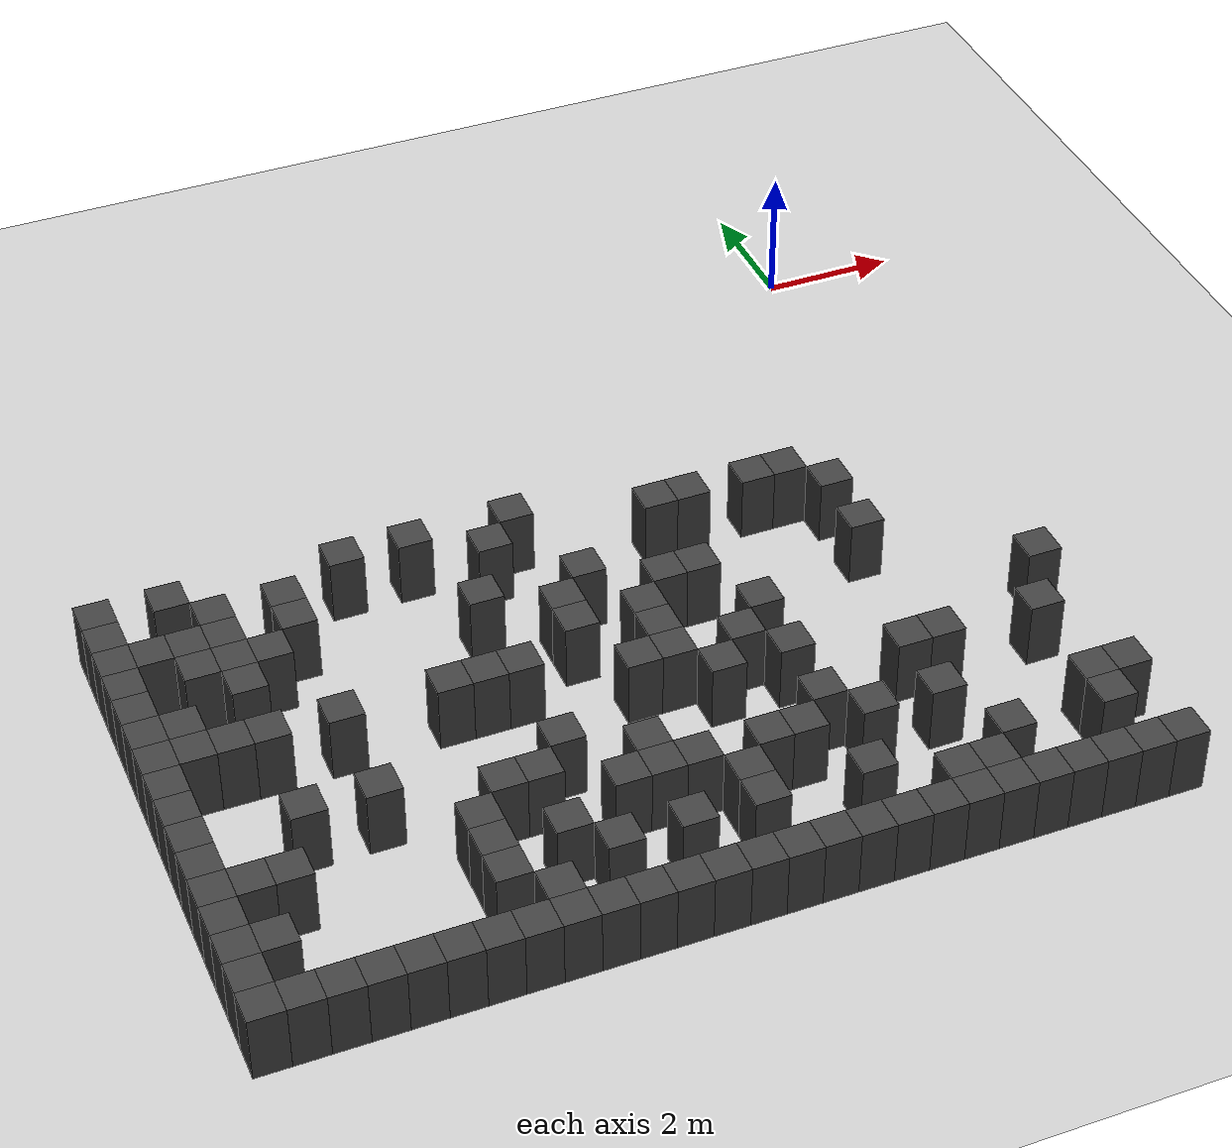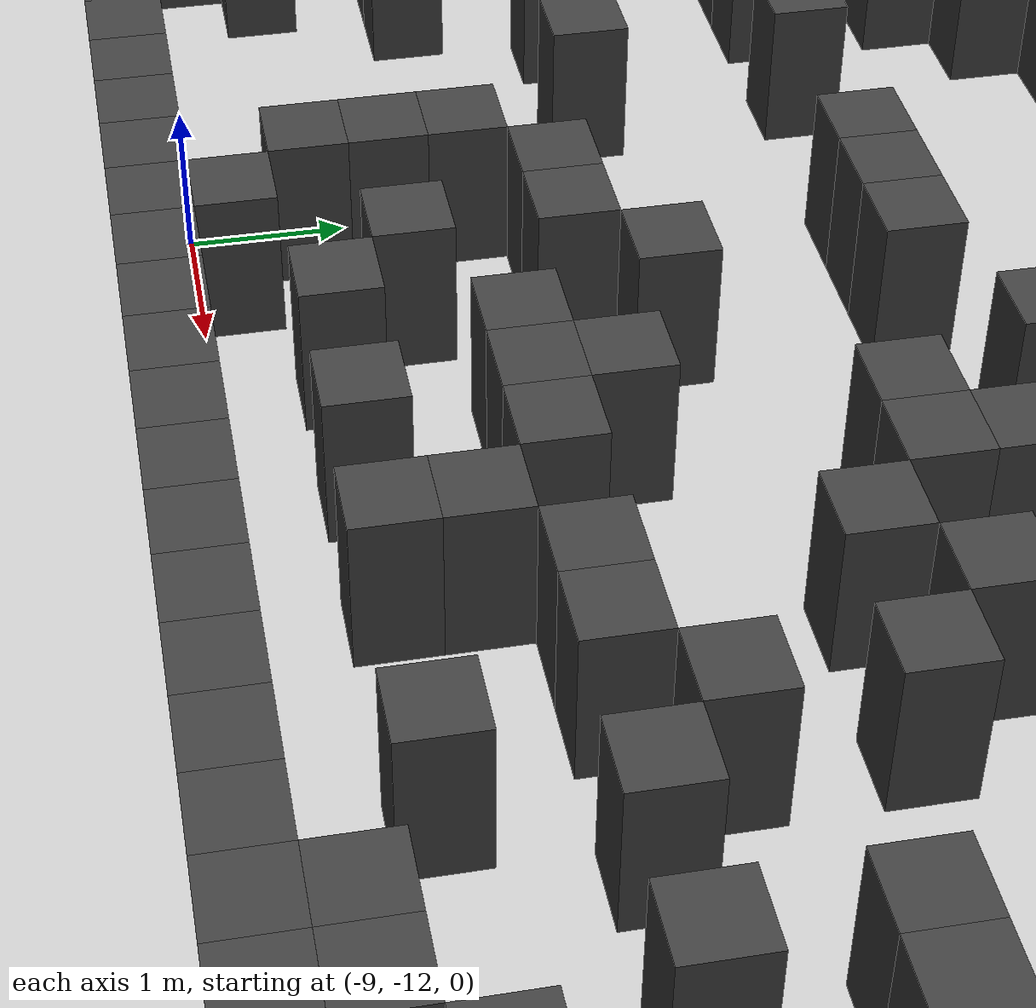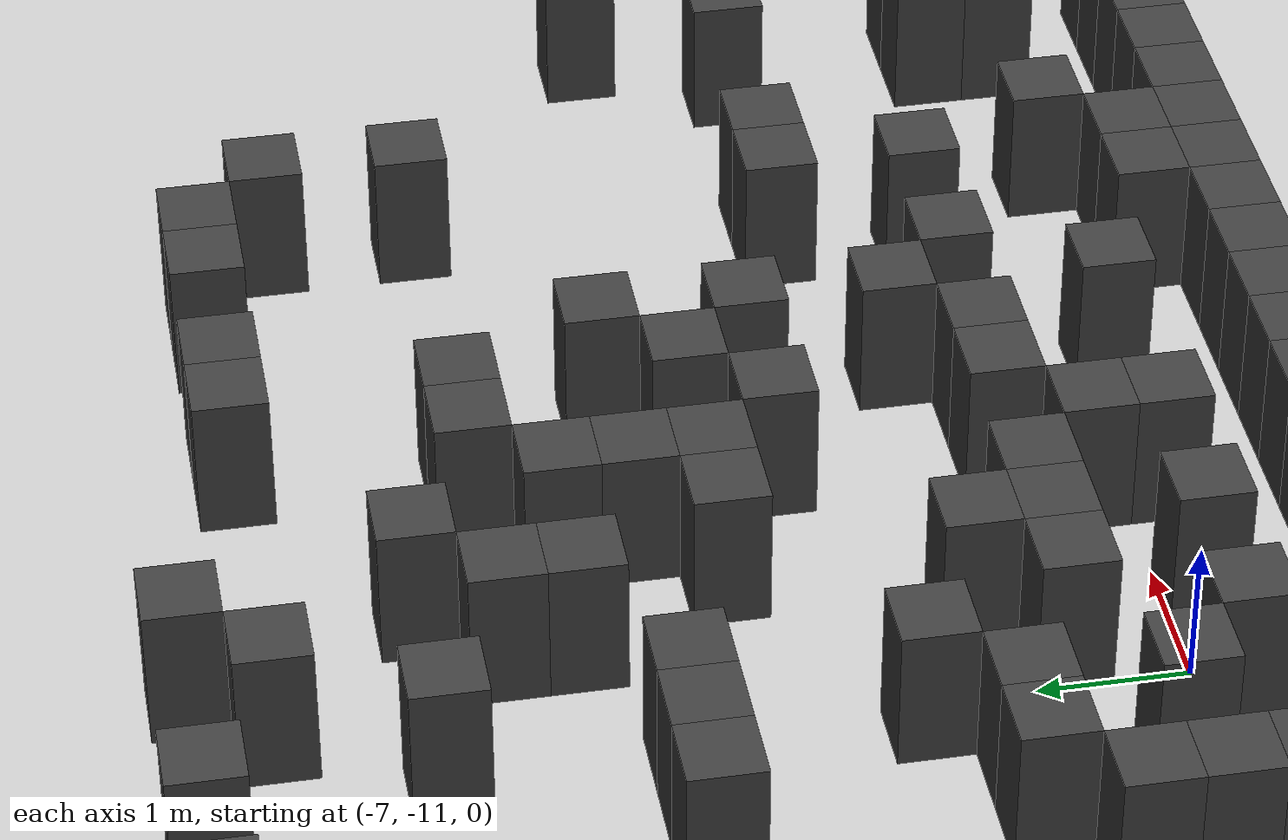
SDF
<sdf version="1.7">
 <world name="map_4818">
  <model name="ground_plane">
   <static>true</static>
   <link name="link">
    <collision name="collision">
     <geometry><plane><normal>0 0 1</normal><size>200 200</size></plane></geometry>
    </collision>
    <visual name="visual">
     <geometry><plane><normal>0 0 1</normal><size>200 200</size></plane></geometry>
     <material><ambient>0.8 0.8 0.8 1</ambient><diffuse>0.8 0.8 0.8 1</diffuse></material>
    </visual>
   </link>
  </model>
  <model name="maze_environment">
   <static>true</static>
   <link name="wall_468">
    <pose>-12.250 -4.750 0.500 0 0 0</pose>
    <collision name="col"><geometry><box><size>0.5 0.5 1.0</size></box></geometry></collision>
    <visual name="vis">
     <geometry><box><size>0.5 0.5 1.0</size></box></geometry>
     <material><ambient>0.15 0.15 0.15 1</ambient><diffuse>0.25 0.25 0.25 1</diffuse></material>
    </visual>
   </link>
   <link name="wall_469">
    <pose>-11.250 -4.750 0.500 0 0 0</pose>
    <collision name="col"><geometry><box><size>0.5 0.5 1.0</size></box></geometry></collision>
    <visual name="vis">
     <geometry><box><size>0.5 0.5 1.0</size></box></geometry>
     <material><ambient>0.15 0.15 0.15 1</ambient><diffuse>0.25 0.25 0.25 1</diffuse></material>
    </visual>
   </link>
   <link name="wall_470">
    <pose>-8.750 -4.750 0.500 0 0 0</pose>
    <collision name="col"><geometry><box><size>0.5 0.5 1.0</size></box></geometry></collision>
    <visual name="vis">
     <geometry><box><size>0.5 0.5 1.0</size></box></geometry>
     <material><ambient>0.15 0.15 0.15 1</ambient><diffuse>0.25 0.25 0.25 1</diffuse></material>
    </visual>
   </link>
   <link name="wall_471">
    <pose>-7.750 -4.750 0.500 0 0 0</pose>
    <collision name="col"><geometry><box><size>0.5 0.5 1.0</size></box></geometry></collision>
    <visual name="vis">
     <geometry><box><size>0.5 0.5 1.0</size></box></geometry>
     <material><ambient>0.15 0.15 0.15 1</ambient><diffuse>0.25 0.25 0.25 1</diffuse></material>
    </visual>
   </link>
   <link name="wall_472">
    <pose>-6.250 -4.750 0.500 0 0 0</pose>
    <collision name="col"><geometry><box><size>0.5 0.5 1.0</size></box></geometry></collision>
    <visual name="vis">
     <geometry><box><size>0.5 0.5 1.0</size></box></geometry>
     <material><ambient>0.15 0.15 0.15 1</ambient><diffuse>0.25 0.25 0.25 1</diffuse></material>
    </visual>
   </link>
   <link name="wall_485">
    <pose>-12.250 -5.250 0.500 0 0 0</pose>
    <collision name="col"><geometry><box><size>0.5 0.5 1.0</size></box></geometry></collision>
    <visual name="vis">
     <geometry><box><size>0.5 0.5 1.0</size></box></geometry>
     <material><ambient>0.15 0.15 0.15 1</ambient><diffuse>0.25 0.25 0.25 1</diffuse></material>
    </visual>
   </link>
   <link name="wall_486">
    <pose>-10.750 -5.250 0.500 0 0 0</pose>
    <collision name="col"><geometry><box><size>0.5 0.5 1.0</size></box></geometry></collision>
    <visual name="vis">
     <geometry><box><size>0.5 0.5 1.0</size></box></geometry>
     <material><ambient>0.15 0.15 0.15 1</ambient><diffuse>0.25 0.25 0.25 1</diffuse></material>
    </visual>
   </link>
   <link name="wall_487">
    <pose>-9.750 -5.250 0.500 0 0 0</pose>
    <collision name="col"><geometry><box><size>0.5 0.5 1.0</size></box></geometry></collision>
    <visual name="vis">
     <geometry><box><size>0.5 0.5 1.0</size></box></geometry>
     <material><ambient>0.15 0.15 0.15 1</ambient><diffuse>0.25 0.25 0.25 1</diffuse></material>
    </visual>
   </link>
   <link name="wall_488">
    <pose>-6.750 -5.250 0.500 0 0 0</pose>
    <collision name="col"><geometry><box><size>0.5 0.5 1.0</size></box></geometry></collision>
    <visual name="vis">
     <geometry><box><size>0.5 0.5 1.0</size></box></geometry>
     <material><ambient>0.15 0.15 0.15 1</ambient><diffuse>0.25 0.25 0.25 1</diffuse></material>
    </visual>
   </link>
   <link name="wall_489">
    <pose>-4.250 -5.250 0.500 0 0 0</pose>
    <collision name="col"><geometry><box><size>0.5 0.5 1.0</size></box></geometry></collision>
    <visual name="vis">
     <geometry><box><size>0.5 0.5 1.0</size></box></geometry>
     <material><ambient>0.15 0.15 0.15 1</ambient><diffuse>0.25 0.25 0.25 1</diffuse></material>
    </visual>
   </link>
   <link name="wall_490">
    <pose>-3.750 -5.250 0.500 0 0 0</pose>
    <collision name="col"><geometry><box><size>0.5 0.5 1.0</size></box></geometry></collision>
    <visual name="vis">
     <geometry><box><size>0.5 0.5 1.0</size></box></geometry>
     <material><ambient>0.15 0.15 0.15 1</ambient><diffuse>0.25 0.25 0.25 1</diffuse></material>
    </visual>
   </link>
   <link name="wall_491">
    <pose>-2.750 -5.250 0.500 0 0 0</pose>
    <collision name="col"><geometry><box><size>0.5 0.5 1.0</size></box></geometry></collision>
    <visual name="vis">
     <geometry><box><size>0.5 0.5 1.0</size></box></geometry>
     <material><ambient>0.15 0.15 0.15 1</ambient><diffuse>0.25 0.25 0.25 1</diffuse></material>
    </visual>
   </link>
   <link name="wall_492">
    <pose>-2.250 -5.250 0.500 0 0 0</pose>
    <collision name="col"><geometry><box><size>0.5 0.5 1.0</size></box></geometry></collision>
    <visual name="vis">
     <geometry><box><size>0.5 0.5 1.0</size></box></geometry>
     <material><ambient>0.15 0.15 0.15 1</ambient><diffuse>0.25 0.25 0.25 1</diffuse></material>
    </visual>
   </link>
   <link name="wall_497">
    <pose>-12.250 -5.750 0.500 0 0 0</pose>
    <collision name="col"><geometry><box><size>0.5 0.5 1.0</size></box></geometry></collision>
    <visual name="vis">
     <geometry><box><size>0.5 0.5 1.0</size></box></geometry>
     <material><ambient>0.15 0.15 0.15 1</ambient><diffuse>0.25 0.25 0.25 1</diffuse></material>
    </visual>
   </link>
   <link name="wall_498">
    <pose>-11.750 -5.750 0.500 0 0 0</pose>
    <collision name="col"><geometry><box><size>0.5 0.5 1.0</size></box></geometry></collision>
    <visual name="vis">
     <geometry><box><size>0.5 0.5 1.0</size></box></geometry>
     <material><ambient>0.15 0.15 0.15 1</ambient><diffuse>0.25 0.25 0.25 1</diffuse></material>
    </visual>
   </link>
   <link name="wall_499">
    <pose>-11.250 -5.750 0.500 0 0 0</pose>
    <collision name="col"><geometry><box><size>0.5 0.5 1.0</size></box></geometry></collision>
    <visual name="vis">
     <geometry><box><size>0.5 0.5 1.0</size></box></geometry>
     <material><ambient>0.15 0.15 0.15 1</ambient><diffuse>0.25 0.25 0.25 1</diffuse></material>
    </visual>
   </link>
   <link name="wall_500">
    <pose>-10.750 -5.750 0.500 0 0 0</pose>
    <collision name="col"><geometry><box><size>0.5 0.5 1.0</size></box></geometry></collision>
    <visual name="vis">
     <geometry><box><size>0.5 0.5 1.0</size></box></geometry>
     <material><ambient>0.15 0.15 0.15 1</ambient><diffuse>0.25 0.25 0.25 1</diffuse></material>
    </visual>
   </link>
   <link name="wall_501">
    <pose>-9.750 -5.750 0.500 0 0 0</pose>
    <collision name="col"><geometry><box><size>0.5 0.5 1.0</size></box></geometry></collision>
    <visual name="vis">
     <geometry><box><size>0.5 0.5 1.0</size></box></geometry>
     <material><ambient>0.15 0.15 0.15 1</ambient><diffuse>0.25 0.25 0.25 1</diffuse></material>
    </visual>
   </link>
   <link name="wall_502">
    <pose>-1.750 -5.750 0.500 0 0 0</pose>
    <collision name="col"><geometry><box><size>0.5 0.5 1.0</size></box></geometry></collision>
    <visual name="vis">
     <geometry><box><size>0.5 0.5 1.0</size></box></geometry>
     <material><ambient>0.15 0.15 0.15 1</ambient><diffuse>0.25 0.25 0.25 1</diffuse></material>
    </visual>
   </link>
   <link name="wall_508">
    <pose>-12.250 -6.250 0.500 0 0 0</pose>
    <collision name="col"><geometry><box><size>0.5 0.5 1.0</size></box></geometry></collision>
    <visual name="vis">
     <geometry><box><size>0.5 0.5 1.0</size></box></geometry>
     <material><ambient>0.15 0.15 0.15 1</ambient><diffuse>0.25 0.25 0.25 1</diffuse></material>
    </visual>
   </link>
   <link name="wall_509">
    <pose>-11.250 -6.250 0.500 0 0 0</pose>
    <collision name="col"><geometry><box><size>0.5 0.5 1.0</size></box></geometry></collision>
    <visual name="vis">
     <geometry><box><size>0.5 0.5 1.0</size></box></geometry>
     <material><ambient>0.15 0.15 0.15 1</ambient><diffuse>0.25 0.25 0.25 1</diffuse></material>
    </visual>
   </link>
   <link name="wall_510">
    <pose>-10.750 -6.250 0.500 0 0 0</pose>
    <collision name="col"><geometry><box><size>0.5 0.5 1.0</size></box></geometry></collision>
    <visual name="vis">
     <geometry><box><size>0.5 0.5 1.0</size></box></geometry>
     <material><ambient>0.15 0.15 0.15 1</ambient><diffuse>0.25 0.25 0.25 1</diffuse></material>
    </visual>
   </link>
   <link name="wall_511">
    <pose>-10.250 -6.250 0.500 0 0 0</pose>
    <collision name="col"><geometry><box><size>0.5 0.5 1.0</size></box></geometry></collision>
    <visual name="vis">
     <geometry><box><size>0.5 0.5 1.0</size></box></geometry>
     <material><ambient>0.15 0.15 0.15 1</ambient><diffuse>0.25 0.25 0.25 1</diffuse></material>
    </visual>
   </link>
   <link name="wall_512">
    <pose>-7.250 -6.250 0.500 0 0 0</pose>
    <collision name="col"><geometry><box><size>0.5 0.5 1.0</size></box></geometry></collision>
    <visual name="vis">
     <geometry><box><size>0.5 0.5 1.0</size></box></geometry>
     <material><ambient>0.15 0.15 0.15 1</ambient><diffuse>0.25 0.25 0.25 1</diffuse></material>
    </visual>
   </link>
   <link name="wall_513">
    <pose>-5.750 -6.250 0.500 0 0 0</pose>
    <collision name="col"><geometry><box><size>0.5 0.5 1.0</size></box></geometry></collision>
    <visual name="vis">
     <geometry><box><size>0.5 0.5 1.0</size></box></geometry>
     <material><ambient>0.15 0.15 0.15 1</ambient><diffuse>0.25 0.25 0.25 1</diffuse></material>
    </visual>
   </link>
   <link name="wall_520">
    <pose>-12.250 -6.750 0.500 0 0 0</pose>
    <collision name="col"><geometry><box><size>0.5 0.5 1.0</size></box></geometry></collision>
    <visual name="vis">
     <geometry><box><size>0.5 0.5 1.0</size></box></geometry>
     <material><ambient>0.15 0.15 0.15 1</ambient><diffuse>0.25 0.25 0.25 1</diffuse></material>
    </visual>
   </link>
   <link name="wall_521">
    <pose>-10.750 -6.750 0.500 0 0 0</pose>
    <collision name="col"><geometry><box><size>0.5 0.5 1.0</size></box></geometry></collision>
    <visual name="vis">
     <geometry><box><size>0.5 0.5 1.0</size></box></geometry>
     <material><ambient>0.15 0.15 0.15 1</ambient><diffuse>0.25 0.25 0.25 1</diffuse></material>
    </visual>
   </link>
   <link name="wall_522">
    <pose>-6.250 -6.750 0.500 0 0 0</pose>
    <collision name="col"><geometry><box><size>0.5 0.5 1.0</size></box></geometry></collision>
    <visual name="vis">
     <geometry><box><size>0.5 0.5 1.0</size></box></geometry>
     <material><ambient>0.15 0.15 0.15 1</ambient><diffuse>0.25 0.25 0.25 1</diffuse></material>
    </visual>
   </link>
   <link name="wall_523">
    <pose>-4.750 -6.750 0.500 0 0 0</pose>
    <collision name="col"><geometry><box><size>0.5 0.5 1.0</size></box></geometry></collision>
    <visual name="vis">
     <geometry><box><size>0.5 0.5 1.0</size></box></geometry>
     <material><ambient>0.15 0.15 0.15 1</ambient><diffuse>0.25 0.25 0.25 1</diffuse></material>
    </visual>
   </link>
   <link name="wall_524">
    <pose>-4.250 -6.750 0.500 0 0 0</pose>
    <collision name="col"><geometry><box><size>0.5 0.5 1.0</size></box></geometry></collision>
    <visual name="vis">
     <geometry><box><size>0.5 0.5 1.0</size></box></geometry>
     <material><ambient>0.15 0.15 0.15 1</ambient><diffuse>0.25 0.25 0.25 1</diffuse></material>
    </visual>
   </link>
   <link name="wall_525">
    <pose>-1.750 -6.750 0.500 0 0 0</pose>
    <collision name="col"><geometry><box><size>0.5 0.5 1.0</size></box></geometry></collision>
    <visual name="vis">
     <geometry><box><size>0.5 0.5 1.0</size></box></geometry>
     <material><ambient>0.15 0.15 0.15 1</ambient><diffuse>0.25 0.25 0.25 1</diffuse></material>
    </visual>
   </link>
   <link name="wall_538">
    <pose>-12.250 -7.250 0.500 0 0 0</pose>
    <collision name="col"><geometry><box><size>0.5 0.5 1.0</size></box></geometry></collision>
    <visual name="vis">
     <geometry><box><size>0.5 0.5 1.0</size></box></geometry>
     <material><ambient>0.15 0.15 0.15 1</ambient><diffuse>0.25 0.25 0.25 1</diffuse></material>
    </visual>
   </link>
   <link name="wall_539">
    <pose>-11.750 -7.250 0.500 0 0 0</pose>
    <collision name="col"><geometry><box><size>0.5 0.5 1.0</size></box></geometry></collision>
    <visual name="vis">
     <geometry><box><size>0.5 0.5 1.0</size></box></geometry>
     <material><ambient>0.15 0.15 0.15 1</ambient><diffuse>0.25 0.25 0.25 1</diffuse></material>
    </visual>
   </link>
   <link name="wall_540">
    <pose>-6.250 -7.250 0.500 0 0 0</pose>
    <collision name="col"><geometry><box><size>0.5 0.5 1.0</size></box></geometry></collision>
    <visual name="vis">
     <geometry><box><size>0.5 0.5 1.0</size></box></geometry>
     <material><ambient>0.15 0.15 0.15 1</ambient><diffuse>0.25 0.25 0.25 1</diffuse></material>
    </visual>
   </link>
   <link name="wall_541">
    <pose>-5.250 -7.250 0.500 0 0 0</pose>
    <collision name="col"><geometry><box><size>0.5 0.5 1.0</size></box></geometry></collision>
    <visual name="vis">
     <geometry><box><size>0.5 0.5 1.0</size></box></geometry>
     <material><ambient>0.15 0.15 0.15 1</ambient><diffuse>0.25 0.25 0.25 1</diffuse></material>
    </visual>
   </link>
   <link name="wall_548">
    <pose>-12.250 -7.750 0.500 0 0 0</pose>
    <collision name="col"><geometry><box><size>0.5 0.5 1.0</size></box></geometry></collision>
    <visual name="vis">
     <geometry><box><size>0.5 0.5 1.0</size></box></geometry>
     <material><ambient>0.15 0.15 0.15 1</ambient><diffuse>0.25 0.25 0.25 1</diffuse></material>
    </visual>
   </link>
   <link name="wall_549">
    <pose>-11.750 -7.750 0.500 0 0 0</pose>
    <collision name="col"><geometry><box><size>0.5 0.5 1.0</size></box></geometry></collision>
    <visual name="vis">
     <geometry><box><size>0.5 0.5 1.0</size></box></geometry>
     <material><ambient>0.15 0.15 0.15 1</ambient><diffuse>0.25 0.25 0.25 1</diffuse></material>
    </visual>
   </link>
   <link name="wall_550">
    <pose>-11.250 -7.750 0.500 0 0 0</pose>
    <collision name="col"><geometry><box><size>0.5 0.5 1.0</size></box></geometry></collision>
    <visual name="vis">
     <geometry><box><size>0.5 0.5 1.0</size></box></geometry>
     <material><ambient>0.15 0.15 0.15 1</ambient><diffuse>0.25 0.25 0.25 1</diffuse></material>
    </visual>
   </link>
   <link name="wall_551">
    <pose>-10.750 -7.750 0.500 0 0 0</pose>
    <collision name="col"><geometry><box><size>0.5 0.5 1.0</size></box></geometry></collision>
    <visual name="vis">
     <geometry><box><size>0.5 0.5 1.0</size></box></geometry>
     <material><ambient>0.15 0.15 0.15 1</ambient><diffuse>0.25 0.25 0.25 1</diffuse></material>
    </visual>
   </link>
   <link name="wall_552">
    <pose>-9.750 -7.750 0.500 0 0 0</pose>
    <collision name="col"><geometry><box><size>0.5 0.5 1.0</size></box></geometry></collision>
    <visual name="vis">
     <geometry><box><size>0.5 0.5 1.0</size></box></geometry>
     <material><ambient>0.15 0.15 0.15 1</ambient><diffuse>0.25 0.25 0.25 1</diffuse></material>
    </visual>
   </link>
   <link name="wall_553">
    <pose>-8.250 -7.750 0.500 0 0 0</pose>
    <collision name="col"><geometry><box><size>0.5 0.5 1.0</size></box></geometry></collision>
    <visual name="vis">
     <geometry><box><size>0.5 0.5 1.0</size></box></geometry>
     <material><ambient>0.15 0.15 0.15 1</ambient><diffuse>0.25 0.25 0.25 1</diffuse></material>
    </visual>
   </link>
   <link name="wall_554">
    <pose>-7.750 -7.750 0.500 0 0 0</pose>
    <collision name="col"><geometry><box><size>0.5 0.5 1.0</size></box></geometry></collision>
    <visual name="vis">
     <geometry><box><size>0.5 0.5 1.0</size></box></geometry>
     <material><ambient>0.15 0.15 0.15 1</ambient><diffuse>0.25 0.25 0.25 1</diffuse></material>
    </visual>
   </link>
   <link name="wall_555">
    <pose>-7.250 -7.750 0.500 0 0 0</pose>
    <collision name="col"><geometry><box><size>0.5 0.5 1.0</size></box></geometry></collision>
    <visual name="vis">
     <geometry><box><size>0.5 0.5 1.0</size></box></geometry>
     <material><ambient>0.15 0.15 0.15 1</ambient><diffuse>0.25 0.25 0.25 1</diffuse></material>
    </visual>
   </link>
   <link name="wall_556">
    <pose>-5.250 -7.750 0.500 0 0 0</pose>
    <collision name="col"><geometry><box><size>0.5 0.5 1.0</size></box></geometry></collision>
    <visual name="vis">
     <geometry><box><size>0.5 0.5 1.0</size></box></geometry>
     <material><ambient>0.15 0.15 0.15 1</ambient><diffuse>0.25 0.25 0.25 1</diffuse></material>
    </visual>
   </link>
   <link name="wall_557">
    <pose>-3.750 -7.750 0.500 0 0 0</pose>
    <collision name="col"><geometry><box><size>0.5 0.5 1.0</size></box></geometry></collision>
    <visual name="vis">
     <geometry><box><size>0.5 0.5 1.0</size></box></geometry>
     <material><ambient>0.15 0.15 0.15 1</ambient><diffuse>0.25 0.25 0.25 1</diffuse></material>
    </visual>
   </link>
   <link name="wall_565">
    <pose>-12.250 -8.250 0.500 0 0 0</pose>
    <collision name="col"><geometry><box><size>0.5 0.5 1.0</size></box></geometry></collision>
    <visual name="vis">
     <geometry><box><size>0.5 0.5 1.0</size></box></geometry>
     <material><ambient>0.15 0.15 0.15 1</ambient><diffuse>0.25 0.25 0.25 1</diffuse></material>
    </visual>
   </link>
   <link name="wall_566">
    <pose>-5.750 -8.250 0.500 0 0 0</pose>
    <collision name="col"><geometry><box><size>0.5 0.5 1.0</size></box></geometry></collision>
    <visual name="vis">
     <geometry><box><size>0.5 0.5 1.0</size></box></geometry>
     <material><ambient>0.15 0.15 0.15 1</ambient><diffuse>0.25 0.25 0.25 1</diffuse></material>
    </visual>
   </link>
   <link name="wall_567">
    <pose>-5.250 -8.250 0.500 0 0 0</pose>
    <collision name="col"><geometry><box><size>0.5 0.5 1.0</size></box></geometry></collision>
    <visual name="vis">
     <geometry><box><size>0.5 0.5 1.0</size></box></geometry>
     <material><ambient>0.15 0.15 0.15 1</ambient><diffuse>0.25 0.25 0.25 1</diffuse></material>
    </visual>
   </link>
   <link name="wall_568">
    <pose>-4.250 -8.250 0.500 0 0 0</pose>
    <collision name="col"><geometry><box><size>0.5 0.5 1.0</size></box></geometry></collision>
    <visual name="vis">
     <geometry><box><size>0.5 0.5 1.0</size></box></geometry>
     <material><ambient>0.15 0.15 0.15 1</ambient><diffuse>0.25 0.25 0.25 1</diffuse></material>
    </visual>
   </link>
   <link name="wall_569">
    <pose>0.250 -8.250 0.500 0 0 0</pose>
    <collision name="col"><geometry><box><size>0.5 0.5 1.0</size></box></geometry></collision>
    <visual name="vis">
     <geometry><box><size>0.5 0.5 1.0</size></box></geometry>
     <material><ambient>0.15 0.15 0.15 1</ambient><diffuse>0.25 0.25 0.25 1</diffuse></material>
    </visual>
   </link>
   <link name="wall_579">
    <pose>-12.250 -8.750 0.500 0 0 0</pose>
    <collision name="col"><geometry><box><size>0.5 0.5 1.0</size></box></geometry></collision>
    <visual name="vis">
     <geometry><box><size>0.5 0.5 1.0</size></box></geometry>
     <material><ambient>0.15 0.15 0.15 1</ambient><diffuse>0.25 0.25 0.25 1</diffuse></material>
    </visual>
   </link>
   <link name="wall_580">
    <pose>-4.750 -8.750 0.500 0 0 0</pose>
    <collision name="col"><geometry><box><size>0.5 0.5 1.0</size></box></geometry></collision>
    <visual name="vis">
     <geometry><box><size>0.5 0.5 1.0</size></box></geometry>
     <material><ambient>0.15 0.15 0.15 1</ambient><diffuse>0.25 0.25 0.25 1</diffuse></material>
    </visual>
   </link>
   <link name="wall_581">
    <pose>-3.750 -8.750 0.500 0 0 0</pose>
    <collision name="col"><geometry><box><size>0.5 0.5 1.0</size></box></geometry></collision>
    <visual name="vis">
     <geometry><box><size>0.5 0.5 1.0</size></box></geometry>
     <material><ambient>0.15 0.15 0.15 1</ambient><diffuse>0.25 0.25 0.25 1</diffuse></material>
    </visual>
   </link>
   <link name="wall_586">
    <pose>-12.250 -9.250 0.500 0 0 0</pose>
    <collision name="col"><geometry><box><size>0.5 0.5 1.0</size></box></geometry></collision>
    <visual name="vis">
     <geometry><box><size>0.5 0.5 1.0</size></box></geometry>
     <material><ambient>0.15 0.15 0.15 1</ambient><diffuse>0.25 0.25 0.25 1</diffuse></material>
    </visual>
   </link>
   <link name="wall_587">
    <pose>-10.750 -9.250 0.500 0 0 0</pose>
    <collision name="col"><geometry><box><size>0.5 0.5 1.0</size></box></geometry></collision>
    <visual name="vis">
     <geometry><box><size>0.5 0.5 1.0</size></box></geometry>
     <material><ambient>0.15 0.15 0.15 1</ambient><diffuse>0.25 0.25 0.25 1</diffuse></material>
    </visual>
   </link>
   <link name="wall_588">
    <pose>-9.750 -9.250 0.500 0 0 0</pose>
    <collision name="col"><geometry><box><size>0.5 0.5 1.0</size></box></geometry></collision>
    <visual name="vis">
     <geometry><box><size>0.5 0.5 1.0</size></box></geometry>
     <material><ambient>0.15 0.15 0.15 1</ambient><diffuse>0.25 0.25 0.25 1</diffuse></material>
    </visual>
   </link>
   <link name="wall_589">
    <pose>-7.250 -9.250 0.500 0 0 0</pose>
    <collision name="col"><geometry><box><size>0.5 0.5 1.0</size></box></geometry></collision>
    <visual name="vis">
     <geometry><box><size>0.5 0.5 1.0</size></box></geometry>
     <material><ambient>0.15 0.15 0.15 1</ambient><diffuse>0.25 0.25 0.25 1</diffuse></material>
    </visual>
   </link>
   <link name="wall_590">
    <pose>-2.250 -9.250 0.500 0 0 0</pose>
    <collision name="col"><geometry><box><size>0.5 0.5 1.0</size></box></geometry></collision>
    <visual name="vis">
     <geometry><box><size>0.5 0.5 1.0</size></box></geometry>
     <material><ambient>0.15 0.15 0.15 1</ambient><diffuse>0.25 0.25 0.25 1</diffuse></material>
    </visual>
   </link>
   <link name="wall_591">
    <pose>-1.750 -9.250 0.500 0 0 0</pose>
    <collision name="col"><geometry><box><size>0.5 0.5 1.0</size></box></geometry></collision>
    <visual name="vis">
     <geometry><box><size>0.5 0.5 1.0</size></box></geometry>
     <material><ambient>0.15 0.15 0.15 1</ambient><diffuse>0.25 0.25 0.25 1</diffuse></material>
    </visual>
   </link>
   <link name="wall_592">
    <pose>-0.250 -9.250 0.500 0 0 0</pose>
    <collision name="col"><geometry><box><size>0.5 0.5 1.0</size></box></geometry></collision>
    <visual name="vis">
     <geometry><box><size>0.5 0.5 1.0</size></box></geometry>
     <material><ambient>0.15 0.15 0.15 1</ambient><diffuse>0.25 0.25 0.25 1</diffuse></material>
    </visual>
   </link>
   <link name="wall_601">
    <pose>-12.250 -9.750 0.500 0 0 0</pose>
    <collision name="col"><geometry><box><size>0.5 0.5 1.0</size></box></geometry></collision>
    <visual name="vis">
     <geometry><box><size>0.5 0.5 1.0</size></box></geometry>
     <material><ambient>0.15 0.15 0.15 1</ambient><diffuse>0.25 0.25 0.25 1</diffuse></material>
    </visual>
   </link>
   <link name="wall_602">
    <pose>-8.250 -9.750 0.500 0 0 0</pose>
    <collision name="col"><geometry><box><size>0.5 0.5 1.0</size></box></geometry></collision>
    <visual name="vis">
     <geometry><box><size>0.5 0.5 1.0</size></box></geometry>
     <material><ambient>0.15 0.15 0.15 1</ambient><diffuse>0.25 0.25 0.25 1</diffuse></material>
    </visual>
   </link>
   <link name="wall_603">
    <pose>-7.750 -9.750 0.500 0 0 0</pose>
    <collision name="col"><geometry><box><size>0.5 0.5 1.0</size></box></geometry></collision>
    <visual name="vis">
     <geometry><box><size>0.5 0.5 1.0</size></box></geometry>
     <material><ambient>0.15 0.15 0.15 1</ambient><diffuse>0.25 0.25 0.25 1</diffuse></material>
    </visual>
   </link>
   <link name="wall_604">
    <pose>-6.250 -9.750 0.500 0 0 0</pose>
    <collision name="col"><geometry><box><size>0.5 0.5 1.0</size></box></geometry></collision>
    <visual name="vis">
     <geometry><box><size>0.5 0.5 1.0</size></box></geometry>
     <material><ambient>0.15 0.15 0.15 1</ambient><diffuse>0.25 0.25 0.25 1</diffuse></material>
    </visual>
   </link>
   <link name="wall_605">
    <pose>-3.750 -9.750 0.500 0 0 0</pose>
    <collision name="col"><geometry><box><size>0.5 0.5 1.0</size></box></geometry></collision>
    <visual name="vis">
     <geometry><box><size>0.5 0.5 1.0</size></box></geometry>
     <material><ambient>0.15 0.15 0.15 1</ambient><diffuse>0.25 0.25 0.25 1</diffuse></material>
    </visual>
   </link>
   <link name="wall_612">
    <pose>-12.250 -10.250 0.500 0 0 0</pose>
    <collision name="col"><geometry><box><size>0.5 0.5 1.0</size></box></geometry></collision>
    <visual name="vis">
     <geometry><box><size>0.5 0.5 1.0</size></box></geometry>
     <material><ambient>0.15 0.15 0.15 1</ambient><diffuse>0.25 0.25 0.25 1</diffuse></material>
    </visual>
   </link>
   <link name="wall_613">
    <pose>-11.750 -10.250 0.500 0 0 0</pose>
    <collision name="col"><geometry><box><size>0.5 0.5 1.0</size></box></geometry></collision>
    <visual name="vis">
     <geometry><box><size>0.5 0.5 1.0</size></box></geometry>
     <material><ambient>0.15 0.15 0.15 1</ambient><diffuse>0.25 0.25 0.25 1</diffuse></material>
    </visual>
   </link>
   <link name="wall_614">
    <pose>-11.250 -10.250 0.500 0 0 0</pose>
    <collision name="col"><geometry><box><size>0.5 0.5 1.0</size></box></geometry></collision>
    <visual name="vis">
     <geometry><box><size>0.5 0.5 1.0</size></box></geometry>
     <material><ambient>0.15 0.15 0.15 1</ambient><diffuse>0.25 0.25 0.25 1</diffuse></material>
    </visual>
   </link>
   <link name="wall_615">
    <pose>-8.750 -10.250 0.500 0 0 0</pose>
    <collision name="col"><geometry><box><size>0.5 0.5 1.0</size></box></geometry></collision>
    <visual name="vis">
     <geometry><box><size>0.5 0.5 1.0</size></box></geometry>
     <material><ambient>0.15 0.15 0.15 1</ambient><diffuse>0.25 0.25 0.25 1</diffuse></material>
    </visual>
   </link>
   <link name="wall_616">
    <pose>-6.750 -10.250 0.500 0 0 0</pose>
    <collision name="col"><geometry><box><size>0.5 0.5 1.0</size></box></geometry></collision>
    <visual name="vis">
     <geometry><box><size>0.5 0.5 1.0</size></box></geometry>
     <material><ambient>0.15 0.15 0.15 1</ambient><diffuse>0.25 0.25 0.25 1</diffuse></material>
    </visual>
   </link>
   <link name="wall_617">
    <pose>-6.250 -10.250 0.500 0 0 0</pose>
    <collision name="col"><geometry><box><size>0.5 0.5 1.0</size></box></geometry></collision>
    <visual name="vis">
     <geometry><box><size>0.5 0.5 1.0</size></box></geometry>
     <material><ambient>0.15 0.15 0.15 1</ambient><diffuse>0.25 0.25 0.25 1</diffuse></material>
    </visual>
   </link>
   <link name="wall_618">
    <pose>-5.750 -10.250 0.500 0 0 0</pose>
    <collision name="col"><geometry><box><size>0.5 0.5 1.0</size></box></geometry></collision>
    <visual name="vis">
     <geometry><box><size>0.5 0.5 1.0</size></box></geometry>
     <material><ambient>0.15 0.15 0.15 1</ambient><diffuse>0.25 0.25 0.25 1</diffuse></material>
    </visual>
   </link>
   <link name="wall_619">
    <pose>-4.750 -10.250 0.500 0 0 0</pose>
    <collision name="col"><geometry><box><size>0.5 0.5 1.0</size></box></geometry></collision>
    <visual name="vis">
     <geometry><box><size>0.5 0.5 1.0</size></box></geometry>
     <material><ambient>0.15 0.15 0.15 1</ambient><diffuse>0.25 0.25 0.25 1</diffuse></material>
    </visual>
   </link>
   <link name="wall_620">
    <pose>-4.250 -10.250 0.500 0 0 0</pose>
    <collision name="col"><geometry><box><size>0.5 0.5 1.0</size></box></geometry></collision>
    <visual name="vis">
     <geometry><box><size>0.5 0.5 1.0</size></box></geometry>
     <material><ambient>0.15 0.15 0.15 1</ambient><diffuse>0.25 0.25 0.25 1</diffuse></material>
    </visual>
   </link>
   <link name="wall_621">
    <pose>-3.250 -10.250 0.500 0 0 0</pose>
    <collision name="col"><geometry><box><size>0.5 0.5 1.0</size></box></geometry></collision>
    <visual name="vis">
     <geometry><box><size>0.5 0.5 1.0</size></box></geometry>
     <material><ambient>0.15 0.15 0.15 1</ambient><diffuse>0.25 0.25 0.25 1</diffuse></material>
    </visual>
   </link>
   <link name="wall_622">
    <pose>-2.250 -10.250 0.500 0 0 0</pose>
    <collision name="col"><geometry><box><size>0.5 0.5 1.0</size></box></geometry></collision>
    <visual name="vis">
     <geometry><box><size>0.5 0.5 1.0</size></box></geometry>
     <material><ambient>0.15 0.15 0.15 1</ambient><diffuse>0.25 0.25 0.25 1</diffuse></material>
    </visual>
   </link>
   <link name="wall_632">
    <pose>-12.250 -10.750 0.500 0 0 0</pose>
    <collision name="col"><geometry><box><size>0.5 0.5 1.0</size></box></geometry></collision>
    <visual name="vis">
     <geometry><box><size>0.5 0.5 1.0</size></box></geometry>
     <material><ambient>0.15 0.15 0.15 1</ambient><diffuse>0.25 0.25 0.25 1</diffuse></material>
    </visual>
   </link>
   <link name="wall_633">
    <pose>-8.750 -10.750 0.500 0 0 0</pose>
    <collision name="col"><geometry><box><size>0.5 0.5 1.0</size></box></geometry></collision>
    <visual name="vis">
     <geometry><box><size>0.5 0.5 1.0</size></box></geometry>
     <material><ambient>0.15 0.15 0.15 1</ambient><diffuse>0.25 0.25 0.25 1</diffuse></material>
    </visual>
   </link>
   <link name="wall_634">
    <pose>-7.750 -10.750 0.500 0 0 0</pose>
    <collision name="col"><geometry><box><size>0.5 0.5 1.0</size></box></geometry></collision>
    <visual name="vis">
     <geometry><box><size>0.5 0.5 1.0</size></box></geometry>
     <material><ambient>0.15 0.15 0.15 1</ambient><diffuse>0.25 0.25 0.25 1</diffuse></material>
    </visual>
   </link>
   <link name="wall_635">
    <pose>-5.250 -10.750 0.500 0 0 0</pose>
    <collision name="col"><geometry><box><size>0.5 0.5 1.0</size></box></geometry></collision>
    <visual name="vis">
     <geometry><box><size>0.5 0.5 1.0</size></box></geometry>
     <material><ambient>0.15 0.15 0.15 1</ambient><diffuse>0.25 0.25 0.25 1</diffuse></material>
    </visual>
   </link>
   <link name="wall_636">
    <pose>-0.250 -10.750 0.500 0 0 0</pose>
    <collision name="col"><geometry><box><size>0.5 0.5 1.0</size></box></geometry></collision>
    <visual name="vis">
     <geometry><box><size>0.5 0.5 1.0</size></box></geometry>
     <material><ambient>0.15 0.15 0.15 1</ambient><diffuse>0.25 0.25 0.25 1</diffuse></material>
    </visual>
   </link>
   <link name="wall_637">
    <pose>0.250 -10.750 0.500 0 0 0</pose>
    <collision name="col"><geometry><box><size>0.5 0.5 1.0</size></box></geometry></collision>
    <visual name="vis">
     <geometry><box><size>0.5 0.5 1.0</size></box></geometry>
     <material><ambient>0.15 0.15 0.15 1</ambient><diffuse>0.25 0.25 0.25 1</diffuse></material>
    </visual>
   </link>
   <link name="wall_646">
    <pose>-12.250 -11.250 0.500 0 0 0</pose>
    <collision name="col"><geometry><box><size>0.5 0.5 1.0</size></box></geometry></collision>
    <visual name="vis">
     <geometry><box><size>0.5 0.5 1.0</size></box></geometry>
     <material><ambient>0.15 0.15 0.15 1</ambient><diffuse>0.25 0.25 0.25 1</diffuse></material>
    </visual>
   </link>
   <link name="wall_647">
    <pose>-11.750 -11.250 0.500 0 0 0</pose>
    <collision name="col"><geometry><box><size>0.5 0.5 1.0</size></box></geometry></collision>
    <visual name="vis">
     <geometry><box><size>0.5 0.5 1.0</size></box></geometry>
     <material><ambient>0.15 0.15 0.15 1</ambient><diffuse>0.25 0.25 0.25 1</diffuse></material>
    </visual>
   </link>
   <link name="wall_648">
    <pose>-8.750 -11.250 0.500 0 0 0</pose>
    <collision name="col"><geometry><box><size>0.5 0.5 1.0</size></box></geometry></collision>
    <visual name="vis">
     <geometry><box><size>0.5 0.5 1.0</size></box></geometry>
     <material><ambient>0.15 0.15 0.15 1</ambient><diffuse>0.25 0.25 0.25 1</diffuse></material>
    </visual>
   </link>
   <link name="wall_649">
    <pose>-7.250 -11.250 0.500 0 0 0</pose>
    <collision name="col"><geometry><box><size>0.5 0.5 1.0</size></box></geometry></collision>
    <visual name="vis">
     <geometry><box><size>0.5 0.5 1.0</size></box></geometry>
     <material><ambient>0.15 0.15 0.15 1</ambient><diffuse>0.25 0.25 0.25 1</diffuse></material>
    </visual>
   </link>
   <link name="wall_650">
    <pose>-6.250 -11.250 0.500 0 0 0</pose>
    <collision name="col"><geometry><box><size>0.5 0.5 1.0</size></box></geometry></collision>
    <visual name="vis">
     <geometry><box><size>0.5 0.5 1.0</size></box></geometry>
     <material><ambient>0.15 0.15 0.15 1</ambient><diffuse>0.25 0.25 0.25 1</diffuse></material>
    </visual>
   </link>
   <link name="wall_651">
    <pose>-5.250 -11.250 0.500 0 0 0</pose>
    <collision name="col"><geometry><box><size>0.5 0.5 1.0</size></box></geometry></collision>
    <visual name="vis">
     <geometry><box><size>0.5 0.5 1.0</size></box></geometry>
     <material><ambient>0.15 0.15 0.15 1</ambient><diffuse>0.25 0.25 0.25 1</diffuse></material>
    </visual>
   </link>
   <link name="wall_652">
    <pose>-3.750 -11.250 0.500 0 0 0</pose>
    <collision name="col"><geometry><box><size>0.5 0.5 1.0</size></box></geometry></collision>
    <visual name="vis">
     <geometry><box><size>0.5 0.5 1.0</size></box></geometry>
     <material><ambient>0.15 0.15 0.15 1</ambient><diffuse>0.25 0.25 0.25 1</diffuse></material>
    </visual>
   </link>
   <link name="wall_653">
    <pose>-1.750 -11.250 0.500 0 0 0</pose>
    <collision name="col"><geometry><box><size>0.5 0.5 1.0</size></box></geometry></collision>
    <visual name="vis">
     <geometry><box><size>0.5 0.5 1.0</size></box></geometry>
     <material><ambient>0.15 0.15 0.15 1</ambient><diffuse>0.25 0.25 0.25 1</diffuse></material>
    </visual>
   </link>
   <link name="wall_654">
    <pose>-0.250 -11.250 0.500 0 0 0</pose>
    <collision name="col"><geometry><box><size>0.5 0.5 1.0</size></box></geometry></collision>
    <visual name="vis">
     <geometry><box><size>0.5 0.5 1.0</size></box></geometry>
     <material><ambient>0.15 0.15 0.15 1</ambient><diffuse>0.25 0.25 0.25 1</diffuse></material>
    </visual>
   </link>
   <link name="wall_663">
    <pose>-12.250 -11.750 0.500 0 0 0</pose>
    <collision name="col"><geometry><box><size>0.5 0.5 1.0</size></box></geometry></collision>
    <visual name="vis">
     <geometry><box><size>0.5 0.5 1.0</size></box></geometry>
     <material><ambient>0.15 0.15 0.15 1</ambient><diffuse>0.25 0.25 0.25 1</diffuse></material>
    </visual>
   </link>
   <link name="wall_664">
    <pose>-8.250 -11.750 0.500 0 0 0</pose>
    <collision name="col"><geometry><box><size>0.5 0.5 1.0</size></box></geometry></collision>
    <visual name="vis">
     <geometry><box><size>0.5 0.5 1.0</size></box></geometry>
     <material><ambient>0.15 0.15 0.15 1</ambient><diffuse>0.25 0.25 0.25 1</diffuse></material>
    </visual>
   </link>
   <link name="wall_665">
    <pose>-2.750 -11.750 0.500 0 0 0</pose>
    <collision name="col"><geometry><box><size>0.5 0.5 1.0</size></box></geometry></collision>
    <visual name="vis">
     <geometry><box><size>0.5 0.5 1.0</size></box></geometry>
     <material><ambient>0.15 0.15 0.15 1</ambient><diffuse>0.25 0.25 0.25 1</diffuse></material>
    </visual>
   </link>
   <link name="wall_666">
    <pose>-2.250 -11.750 0.500 0 0 0</pose>
    <collision name="col"><geometry><box><size>0.5 0.5 1.0</size></box></geometry></collision>
    <visual name="vis">
     <geometry><box><size>0.5 0.5 1.0</size></box></geometry>
     <material><ambient>0.15 0.15 0.15 1</ambient><diffuse>0.25 0.25 0.25 1</diffuse></material>
    </visual>
   </link>
   <link name="wall_676">
    <pose>-12.250 -12.250 0.500 0 0 0</pose>
    <collision name="col"><geometry><box><size>0.5 0.5 1.0</size></box></geometry></collision>
    <visual name="vis">
     <geometry><box><size>0.5 0.5 1.0</size></box></geometry>
     <material><ambient>0.15 0.15 0.15 1</ambient><diffuse>0.25 0.25 0.25 1</diffuse></material>
    </visual>
   </link>
   <link name="wall_677">
    <pose>-11.750 -12.250 0.500 0 0 0</pose>
    <collision name="col"><geometry><box><size>0.5 0.5 1.0</size></box></geometry></collision>
    <visual name="vis">
     <geometry><box><size>0.5 0.5 1.0</size></box></geometry>
     <material><ambient>0.15 0.15 0.15 1</ambient><diffuse>0.25 0.25 0.25 1</diffuse></material>
    </visual>
   </link>
   <link name="wall_678">
    <pose>-11.250 -12.250 0.500 0 0 0</pose>
    <collision name="col"><geometry><box><size>0.5 0.5 1.0</size></box></geometry></collision>
    <visual name="vis">
     <geometry><box><size>0.5 0.5 1.0</size></box></geometry>
     <material><ambient>0.15 0.15 0.15 1</ambient><diffuse>0.25 0.25 0.25 1</diffuse></material>
    </visual>
   </link>
   <link name="wall_679">
    <pose>-10.750 -12.250 0.500 0 0 0</pose>
    <collision name="col"><geometry><box><size>0.5 0.5 1.0</size></box></geometry></collision>
    <visual name="vis">
     <geometry><box><size>0.5 0.5 1.0</size></box></geometry>
     <material><ambient>0.15 0.15 0.15 1</ambient><diffuse>0.25 0.25 0.25 1</diffuse></material>
    </visual>
   </link>
   <link name="wall_680">
    <pose>-10.250 -12.250 0.500 0 0 0</pose>
    <collision name="col"><geometry><box><size>0.5 0.5 1.0</size></box></geometry></collision>
    <visual name="vis">
     <geometry><box><size>0.5 0.5 1.0</size></box></geometry>
     <material><ambient>0.15 0.15 0.15 1</ambient><diffuse>0.25 0.25 0.25 1</diffuse></material>
    </visual>
   </link>
   <link name="wall_681">
    <pose>-9.750 -12.250 0.500 0 0 0</pose>
    <collision name="col"><geometry><box><size>0.5 0.5 1.0</size></box></geometry></collision>
    <visual name="vis">
     <geometry><box><size>0.5 0.5 1.0</size></box></geometry>
     <material><ambient>0.15 0.15 0.15 1</ambient><diffuse>0.25 0.25 0.25 1</diffuse></material>
    </visual>
   </link>
   <link name="wall_682">
    <pose>-9.250 -12.250 0.500 0 0 0</pose>
    <collision name="col"><geometry><box><size>0.5 0.5 1.0</size></box></geometry></collision>
    <visual name="vis">
     <geometry><box><size>0.5 0.5 1.0</size></box></geometry>
     <material><ambient>0.15 0.15 0.15 1</ambient><diffuse>0.25 0.25 0.25 1</diffuse></material>
    </visual>
   </link>
   <link name="wall_683">
    <pose>-8.750 -12.250 0.500 0 0 0</pose>
    <collision name="col"><geometry><box><size>0.5 0.5 1.0</size></box></geometry></collision>
    <visual name="vis">
     <geometry><box><size>0.5 0.5 1.0</size></box></geometry>
     <material><ambient>0.15 0.15 0.15 1</ambient><diffuse>0.25 0.25 0.25 1</diffuse></material>
    </visual>
   </link>
   <link name="wall_684">
    <pose>-8.250 -12.250 0.500 0 0 0</pose>
    <collision name="col"><geometry><box><size>0.5 0.5 1.0</size></box></geometry></collision>
    <visual name="vis">
     <geometry><box><size>0.5 0.5 1.0</size></box></geometry>
     <material><ambient>0.15 0.15 0.15 1</ambient><diffuse>0.25 0.25 0.25 1</diffuse></material>
    </visual>
   </link>
   <link name="wall_685">
    <pose>-7.750 -12.250 0.500 0 0 0</pose>
    <collision name="col"><geometry><box><size>0.5 0.5 1.0</size></box></geometry></collision>
    <visual name="vis">
     <geometry><box><size>0.5 0.5 1.0</size></box></geometry>
     <material><ambient>0.15 0.15 0.15 1</ambient><diffuse>0.25 0.25 0.25 1</diffuse></material>
    </visual>
   </link>
   <link name="wall_686">
    <pose>-7.250 -12.250 0.500 0 0 0</pose>
    <collision name="col"><geometry><box><size>0.5 0.5 1.0</size></box></geometry></collision>
    <visual name="vis">
     <geometry><box><size>0.5 0.5 1.0</size></box></geometry>
     <material><ambient>0.15 0.15 0.15 1</ambient><diffuse>0.25 0.25 0.25 1</diffuse></material>
    </visual>
   </link>
   <link name="wall_687">
    <pose>-6.750 -12.250 0.500 0 0 0</pose>
    <collision name="col"><geometry><box><size>0.5 0.5 1.0</size></box></geometry></collision>
    <visual name="vis">
     <geometry><box><size>0.5 0.5 1.0</size></box></geometry>
     <material><ambient>0.15 0.15 0.15 1</ambient><diffuse>0.25 0.25 0.25 1</diffuse></material>
    </visual>
   </link>
   <link name="wall_688">
    <pose>-6.250 -12.250 0.500 0 0 0</pose>
    <collision name="col"><geometry><box><size>0.5 0.5 1.0</size></box></geometry></collision>
    <visual name="vis">
     <geometry><box><size>0.5 0.5 1.0</size></box></geometry>
     <material><ambient>0.15 0.15 0.15 1</ambient><diffuse>0.25 0.25 0.25 1</diffuse></material>
    </visual>
   </link>
   <link name="wall_689">
    <pose>-5.750 -12.250 0.500 0 0 0</pose>
    <collision name="col"><geometry><box><size>0.5 0.5 1.0</size></box></geometry></collision>
    <visual name="vis">
     <geometry><box><size>0.5 0.5 1.0</size></box></geometry>
     <material><ambient>0.15 0.15 0.15 1</ambient><diffuse>0.25 0.25 0.25 1</diffuse></material>
    </visual>
   </link>
   <link name="wall_690">
    <pose>-5.250 -12.250 0.500 0 0 0</pose>
    <collision name="col"><geometry><box><size>0.5 0.5 1.0</size></box></geometry></collision>
    <visual name="vis">
     <geometry><box><size>0.5 0.5 1.0</size></box></geometry>
     <material><ambient>0.15 0.15 0.15 1</ambient><diffuse>0.25 0.25 0.25 1</diffuse></material>
    </visual>
   </link>
   <link name="wall_691">
    <pose>-4.750 -12.250 0.500 0 0 0</pose>
    <collision name="col"><geometry><box><size>0.5 0.5 1.0</size></box></geometry></collision>
    <visual name="vis">
     <geometry><box><size>0.5 0.5 1.0</size></box></geometry>
     <material><ambient>0.15 0.15 0.15 1</ambient><diffuse>0.25 0.25 0.25 1</diffuse></material>
    </visual>
   </link>
   <link name="wall_692">
    <pose>-4.250 -12.250 0.500 0 0 0</pose>
    <collision name="col"><geometry><box><size>0.5 0.5 1.0</size></box></geometry></collision>
    <visual name="vis">
     <geometry><box><size>0.5 0.5 1.0</size></box></geometry>
     <material><ambient>0.15 0.15 0.15 1</ambient><diffuse>0.25 0.25 0.25 1</diffuse></material>
    </visual>
   </link>
   <link name="wall_693">
    <pose>-3.750 -12.250 0.500 0 0 0</pose>
    <collision name="col"><geometry><box><size>0.5 0.5 1.0</size></box></geometry></collision>
    <visual name="vis">
     <geometry><box><size>0.5 0.5 1.0</size></box></geometry>
     <material><ambient>0.15 0.15 0.15 1</ambient><diffuse>0.25 0.25 0.25 1</diffuse></material>
    </visual>
   </link>
   <link name="wall_694">
    <pose>-3.250 -12.250 0.500 0 0 0</pose>
    <collision name="col"><geometry><box><size>0.5 0.5 1.0</size></box></geometry></collision>
    <visual name="vis">
     <geometry><box><size>0.5 0.5 1.0</size></box></geometry>
     <material><ambient>0.15 0.15 0.15 1</ambient><diffuse>0.25 0.25 0.25 1</diffuse></material>
    </visual>
   </link>
   <link name="wall_695">
    <pose>-2.750 -12.250 0.500 0 0 0</pose>
    <collision name="col"><geometry><box><size>0.5 0.5 1.0</size></box></geometry></collision>
    <visual name="vis">
     <geometry><box><size>0.5 0.5 1.0</size></box></geometry>
     <material><ambient>0.15 0.15 0.15 1</ambient><diffuse>0.25 0.25 0.25 1</diffuse></material>
    </visual>
   </link>
   <link name="wall_696">
    <pose>-2.250 -12.250 0.500 0 0 0</pose>
    <collision name="col"><geometry><box><size>0.5 0.5 1.0</size></box></geometry></collision>
    <visual name="vis">
     <geometry><box><size>0.5 0.5 1.0</size></box></geometry>
     <material><ambient>0.15 0.15 0.15 1</ambient><diffuse>0.25 0.25 0.25 1</diffuse></material>
    </visual>
   </link>
   <link name="wall_697">
    <pose>-1.750 -12.250 0.500 0 0 0</pose>
    <collision name="col"><geometry><box><size>0.5 0.5 1.0</size></box></geometry></collision>
    <visual name="vis">
     <geometry><box><size>0.5 0.5 1.0</size></box></geometry>
     <material><ambient>0.15 0.15 0.15 1</ambient><diffuse>0.25 0.25 0.25 1</diffuse></material>
    </visual>
   </link>
   <link name="wall_698">
    <pose>-1.250 -12.250 0.500 0 0 0</pose>
    <collision name="col"><geometry><box><size>0.5 0.5 1.0</size></box></geometry></collision>
    <visual name="vis">
     <geometry><box><size>0.5 0.5 1.0</size></box></geometry>
     <material><ambient>0.15 0.15 0.15 1</ambient><diffuse>0.25 0.25 0.25 1</diffuse></material>
    </visual>
   </link>
   <link name="wall_699">
    <pose>-0.750 -12.250 0.500 0 0 0</pose>
    <collision name="col"><geometry><box><size>0.5 0.5 1.0</size></box></geometry></collision>
    <visual name="vis">
     <geometry><box><size>0.5 0.5 1.0</size></box></geometry>
     <material><ambient>0.15 0.15 0.15 1</ambient><diffuse>0.25 0.25 0.25 1</diffuse></material>
    </visual>
   </link>
   <link name="wall_700">
    <pose>-0.250 -12.250 0.500 0 0 0</pose>
    <collision name="col"><geometry><box><size>0.5 0.5 1.0</size></box></geometry></collision>
    <visual name="vis">
     <geometry><box><size>0.5 0.5 1.0</size></box></geometry>
     <material><ambient>0.15 0.15 0.15 1</ambient><diffuse>0.25 0.25 0.25 1</diffuse></material>
    </visual>
   </link>
   <link name="wall_701">
    <pose>0.250 -12.250 0.500 0 0 0</pose>
    <collision name="col"><geometry><box><size>0.5 0.5 1.0</size></box></geometry></collision>
    <visual name="vis">
     <geometry><box><size>0.5 0.5 1.0</size></box></geometry>
     <material><ambient>0.15 0.15 0.15 1</ambient><diffuse>0.25 0.25 0.25 1</diffuse></material>
    </visual>
   </link>
  </model>
 </world>
</sdf>
